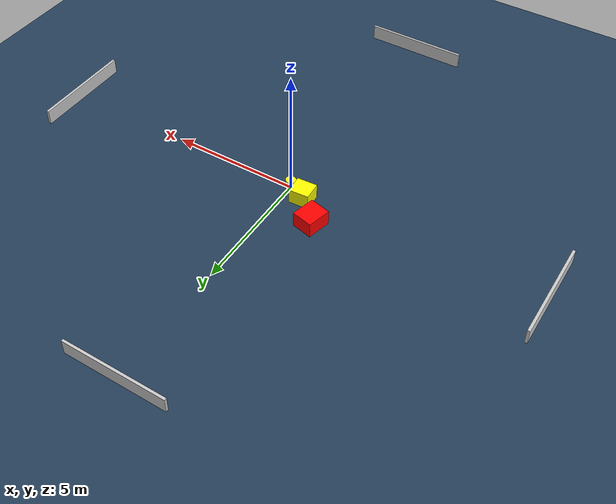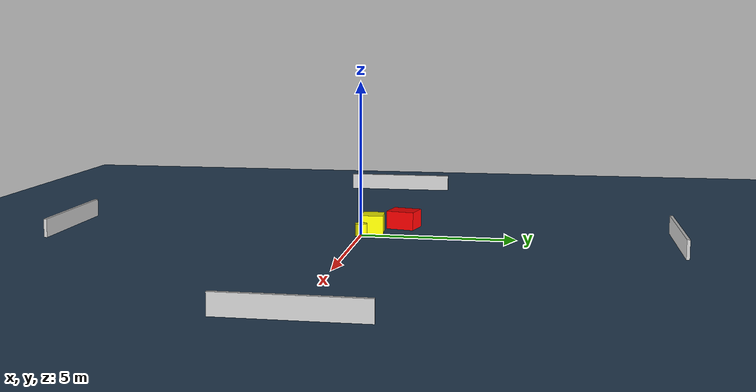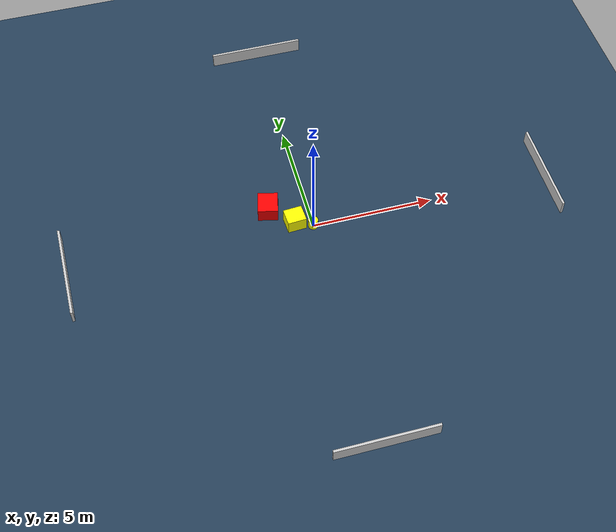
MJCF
<?xml version="1.0" ?>
<mujoco model="generated_environment">
  <option timestep="0.01" integrator="RK4" cone="elliptic"/>
  <default>
    <geom density="1"/>
  </default>
  <asset>
    <texture builtin="gradient" height="3072" name="skybox" rgb1="0.3 0.5 0.7" rgb2="0 0 0" type="skybox" width="512"/>
    <texture builtin="checker" height="300" name="groundplane" rgb1="0.2 0.3 0.4" rgb2="0.1 0.2 0.3" type="2d" width="300"/>
    <material name="groundplane" reflectance="0.2" texrepeat="5 5" texture="groundplane"/>
  </asset>
  <worldbody>
    <light dir="0 0 -1" directional="true" pos="0 0 1.5"/>
    <geom condim="3" friction="0.5 0.005 0.001" material="groundplane" name="floor" pos="0 0 0" size="0 0 0.05" type="plane"/>
    <body name="walls">
      <geom name="wall_1" condim="4" pos="-10.0 0.0 0.3" rgba="0.800000011920929 0.800000011920929 0.800000011920929 1.0" size="0.05 2.0 0.3" type="box"/>
      <geom name="wall_2" condim="4" pos="10.0 0.0 0.3" rgba="0.800000011920929 0.800000011920929 0.800000011920929 1.0" size="0.05 2.0 0.3" type="box"/>
      <geom name="wall_3" condim="4" pos="0.0 -10.0 0.3" rgba="0.800000011920929 0.800000011920929 0.800000011920929 1.0" size="2.0 0.05 0.3" type="box"/>
      <geom name="wall_4" condim="4" pos="0.0 10.0 0.3" rgba="0.800000011920929 0.800000011920929 0.800000011920929 1.0" size="2.0 0.05 0.3" type="box"/>
    </body>
    <body name="robot">
      <joint name="joint_x" type="slide" pos="0 0 0" axis="1 0 0"/>
      <joint name="joint_y" type="slide" pos="0 0 0" axis="0 1 0"/>
      <geom name="robot" type="cylinder" pos="0.0 0.0 0.2" size="0.2 0.2 0.0" mass="5.0" friction="1.0 0.005 0.0001" condim="4" rgba="1.0 1.0 0.0 1.0"/>
    </body>
    <body name="obstacle_1_movable">
      <geom name="obstacle_1_movable" condim="4" pos="-0.6908439923312915 0.2967572527977428 0.3" euler="0 0 183.77179644655567" friction="0.0 0.005 0.001" rgba="1.0 1.0 0.0 1.0" size="0.3888527689095036 0.3535619536838699 0.3" type="box" mass="0.1"/>
      <joint type="free"/>
    </body>
    <body name="obstacle_2_static">
      <geom name="obstacle_2_static" condim="4" pos="-1.5899680013512216 1.2077561504740888 0.3" euler="0 0 346.87998049681346" friction="0.0 0.005 0.001" rgba="1.0 0.0 0.0 1.0" size="0.4095667334140808 0.4697457314520669 0.3" type="box"/>
    </body>
  </worldbody>
  <actuator>
    <motor name="actuator_x" joint="joint_x" gear="1" ctrlrange="-1 1"/>
    <motor name="actuator_y" joint="joint_y" gear="1" ctrlrange="-1 1"/>
  </actuator>
</mujoco>
